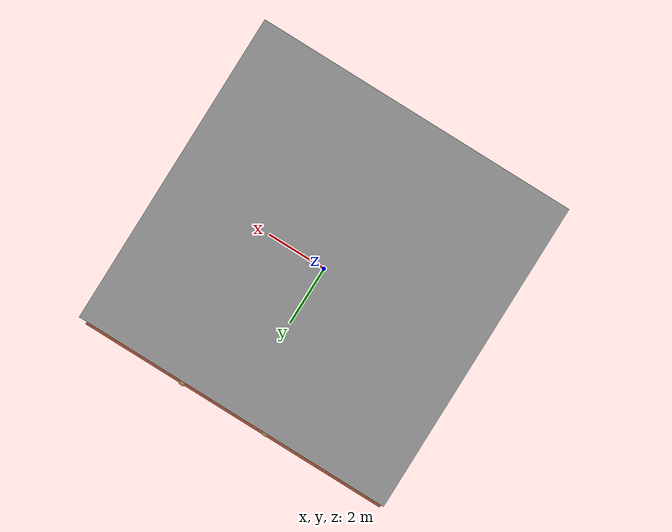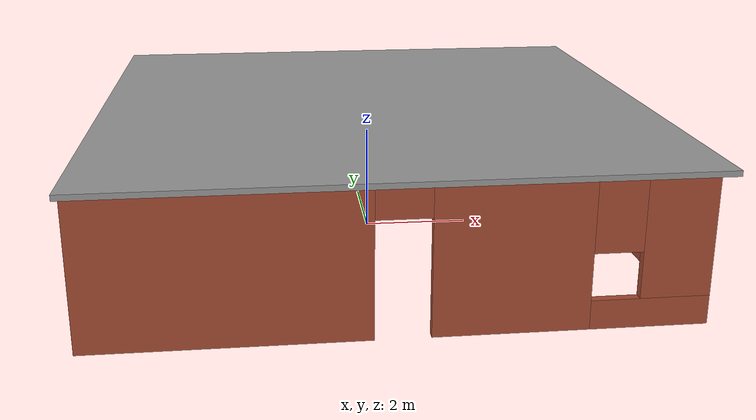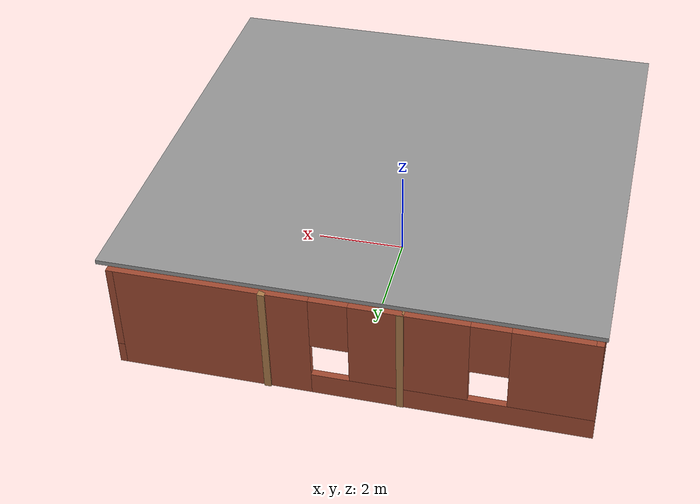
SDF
<sdf version="1.6">
 <model name="texturetest">
  <link name="Wall_1">
   <pose>0 -4.94346 0 0 -0 0</pose>
   <visual name="Wall_1_Visual_0">
    <pose>-2.70083 0 1.25 0 -0 0</pose>
    <geometry><box><size>4.59833 0.15 2.5</size></box></geometry>
    <material>
     <script><uri>file://media/materials/scripts/gazebo.material</uri><name>Gazebo/Bricks</name></script>
     <ambient>1 1 1 1</ambient>
    </material>
    <meta><layer>0</layer></meta>
   </visual>
   <visual name="Wall_1_Visual_1">
    <pose>1.77193 0 1.25 0 -0 0</pose>
    <geometry><box><size>2.5472 0.15 2.5</size></box></geometry>
    <material>
     <script><uri>file://media/materials/scripts/gazebo.material</uri><name>Gazebo/Bricks</name></script>
     <ambient>1 1 1 1</ambient>
    </material>
    <meta><layer>0</layer></meta>
   </visual>
   <visual name="Wall_1_Visual_2">
    <pose>4.02277 0 0.25 0 -0 0</pose>
    <geometry><box><size>1.95447 0.15 0.5</size></box></geometry>
    <material>
     <script><uri>file://media/materials/scripts/gazebo.material</uri><name>Gazebo/Bricks</name></script>
     <ambient>1 1 1 1</ambient>
    </material>
    <meta><layer>0</layer></meta>
   </visual>
   <visual name="Wall_1_Visual_3">
    <pose>4.42277 0 1.5 0 -0 0</pose>
    <geometry><box><size>1.15447 0.15 2</size></box></geometry>
    <material>
     <script><uri>file://media/materials/scripts/gazebo.material</uri><name>Gazebo/Bricks</name></script>
     <ambient>1 1 1 1</ambient>
    </material>
    <meta><layer>0</layer></meta>
   </visual>
   <visual name="Wall_1_Visual_4">
    <pose>3.44553 0 1.9 0 -0 0</pose>
    <geometry><box><size>0.8 0.15 1.2</size></box></geometry>
    <material>
     <script><uri>file://media/materials/scripts/gazebo.material</uri><name>Gazebo/Bricks</name></script>
     <ambient>1 1 1 1</ambient>
    </material>
    <meta><layer>0</layer></meta>
   </visual>
   <visual name="Wall_1_Visual_5">
    <pose>0.048332 0 2.25 0 -0 0</pose>
    <geometry><box><size>0.9 0.15 0.5</size></box></geometry>
    <material>
     <script><uri>file://media/materials/scripts/gazebo.material</uri><name>Gazebo/Bricks</name></script>
     <ambient>1 1 1 1</ambient>
    </material>
    <meta><layer>0</layer></meta>
   </visual>
   <collision name="Wall_1_Collision_0">
    <pose>-2.70083 0 1.25 0 -0 0</pose>
    <geometry><box><size>4.59833 0.15 2.5</size></box></geometry>
    <surface>
     <friction>
      <ode><mu>1</mu><mu2>1</mu2><fdir1>0 0 0</fdir1><slip1>0</slip1><slip2>0</slip2></ode>
      <torsional>
       <coefficient>1</coefficient>
       <patch_radius>0</patch_radius>
       <surface_radius>0</surface_radius>
       <use_patch_radius>1</use_patch_radius>
       <ode><slip>0</slip></ode>
      </torsional>
     </friction>
     <bounce><restitution_coefficient>0</restitution_coefficient><threshold>1e+06</threshold></bounce>
     <contact>
      <collide_without_contact>0</collide_without_contact>
      <collide_without_contact_bitmask>1</collide_without_contact_bitmask>
      <collide_bitmask>1</collide_bitmask>
      <ode>
       <soft_cfm>0</soft_cfm>
       <soft_erp>0.2</soft_erp>
       <kp>1e+13</kp>
       <kd>1</kd>
       <max_vel>0.01</max_vel>
       <min_depth>0</min_depth>
      </ode>
      <bullet>
       <split_impulse>1</split_impulse>
       <split_impulse_penetration_threshold>-0.01</split_impulse_penetration_threshold>
       <soft_cfm>0</soft_cfm>
       <soft_erp>0.2</soft_erp>
       <kp>1e+13</kp>
       <kd>1</kd>
      </bullet>
     </contact>
    </surface>
   </collision>
   <collision name="Wall_1_Collision_1">
    <pose>1.77193 0 1.25 0 -0 0</pose>
    <geometry><box><size>2.5472 0.15 2.5</size></box></geometry>
    <surface>
     <friction>
      <ode><mu>1</mu><mu2>1</mu2><fdir1>0 0 0</fdir1><slip1>0</slip1><slip2>0</slip2></ode>
      <torsional>
       <coefficient>1</coefficient>
       <patch_radius>0</patch_radius>
       <surface_radius>0</surface_radius>
       <use_patch_radius>1</use_patch_radius>
       <ode><slip>0</slip></ode>
      </torsional>
     </friction>
     <bounce><restitution_coefficient>0</restitution_coefficient><threshold>1e+06</threshold></bounce>
     <contact>
      <collide_without_contact>0</collide_without_contact>
      <collide_without_contact_bitmask>1</collide_without_contact_bitmask>
      <collide_bitmask>1</collide_bitmask>
      <ode>
       <soft_cfm>0</soft_cfm>
       <soft_erp>0.2</soft_erp>
       <kp>1e+13</kp>
       <kd>1</kd>
       <max_vel>0.01</max_vel>
       <min_depth>0</min_depth>
      </ode>
      <bullet>
       <split_impulse>1</split_impulse>
       <split_impulse_penetration_threshold>-0.01</split_impulse_penetration_threshold>
       <soft_cfm>0</soft_cfm>
       <soft_erp>0.2</soft_erp>
       <kp>1e+13</kp>
       <kd>1</kd>
      </bullet>
     </contact>
    </surface>
   </collision>
   <collision name="Wall_1_Collision_2">
    <pose>4.02277 0 0.25 0 -0 0</pose>
    <geometry><box><size>1.95447 0.15 0.5</size></box></geometry>
    <surface>
     <friction>
      <ode><mu>1</mu><mu2>1</mu2><fdir1>0 0 0</fdir1><slip1>0</slip1><slip2>0</slip2></ode>
      <torsional>
       <coefficient>1</coefficient>
       <patch_radius>0</patch_radius>
       <surface_radius>0</surface_radius>
       <use_patch_radius>1</use_patch_radius>
       <ode><slip>0</slip></ode>
      </torsional>
     </friction>
     <bounce><restitution_coefficient>0</restitution_coefficient><threshold>1e+06</threshold></bounce>
     <contact>
      <collide_without_contact>0</collide_without_contact>
      <collide_without_contact_bitmask>1</collide_without_contact_bitmask>
      <collide_bitmask>1</collide_bitmask>
      <ode>
       <soft_cfm>0</soft_cfm>
       <soft_erp>0.2</soft_erp>
       <kp>1e+13</kp>
       <kd>1</kd>
       <max_vel>0.01</max_vel>
       <min_depth>0</min_depth>
      </ode>
      <bullet>
       <split_impulse>1</split_impulse>
       <split_impulse_penetration_threshold>-0.01</split_impulse_penetration_threshold>
       <soft_cfm>0</soft_cfm>
       <soft_erp>0.2</soft_erp>
       <kp>1e+13</kp>
       <kd>1</kd>
      </bullet>
     </contact>
    </surface>
   </collision>
   <collision name="Wall_1_Collision_3">
    <pose>4.42277 0 1.5 0 -0 0</pose>
    <geometry><box><size>1.15447 0.15 2</size></box></geometry>
    <surface>
     <friction>
      <ode><mu>1</mu><mu2>1</mu2><fdir1>0 0 0</fdir1><slip1>0</slip1><slip2>0</slip2></ode>
      <torsional>
       <coefficient>1</coefficient>
       <patch_radius>0</patch_radius>
       <surface_radius>0</surface_radius>
       <use_patch_radius>1</use_patch_radius>
       <ode><slip>0</slip></ode>
      </torsional>
     </friction>
     <bounce><restitution_coefficient>0</restitution_coefficient><threshold>1e+06</threshold></bounce>
     <contact>
      <collide_without_contact>0</collide_without_contact>
      <collide_without_contact_bitmask>1</collide_without_contact_bitmask>
      <collide_bitmask>1</collide_bitmask>
      <ode>
       <soft_cfm>0</soft_cfm>
       <soft_erp>0.2</soft_erp>
       <kp>1e+13</kp>
       <kd>1</kd>
       <max_vel>0.01</max_vel>
       <min_depth>0</min_depth>
      </ode>
      <bullet>
       <split_impulse>1</split_impulse>
       <split_impulse_penetration_threshold>-0.01</split_impulse_penetration_threshold>
       <soft_cfm>0</soft_cfm>
       <soft_erp>0.2</soft_erp>
       <kp>1e+13</kp>
       <kd>1</kd>
      </bullet>
     </contact>
    </surface>
   </collision>
   <collision name="Wall_1_Collision_4">
    <pose>3.44553 0 1.9 0 -0 0</pose>
    <geometry><box><size>0.8 0.15 1.2</size></box></geometry>
    <surface>
     <friction>
      <ode><mu>1</mu><mu2>1</mu2><fdir1>0 0 0</fdir1><slip1>0</slip1><slip2>0</slip2></ode>
      <torsional>
       <coefficient>1</coefficient>
       <patch_radius>0</patch_radius>
       <surface_radius>0</surface_radius>
       <use_patch_radius>1</use_patch_radius>
       <ode><slip>0</slip></ode>
      </torsional>
     </friction>
     <bounce><restitution_coefficient>0</restitution_coefficient><threshold>1e+06</threshold></bounce>
     <contact>
      <collide_without_contact>0</collide_without_contact>
      <collide_without_contact_bitmask>1</collide_without_contact_bitmask>
      <collide_bitmask>1</collide_bitmask>
      <ode>
       <soft_cfm>0</soft_cfm>
       <soft_erp>0.2</soft_erp>
       <kp>1e+13</kp>
       <kd>1</kd>
       <max_vel>0.01</max_vel>
       <min_depth>0</min_depth>
      </ode>
      <bullet>
       <split_impulse>1</split_impulse>
       <split_impulse_penetration_threshold>-0.01</split_impulse_penetration_threshold>
       <soft_cfm>0</soft_cfm>
       <soft_erp>0.2</soft_erp>
       <kp>1e+13</kp>
       <kd>1</kd>
      </bullet>
     </contact>
    </surface>
   </collision>
   <collision name="Wall_1_Collision_5">
    <pose>0.048332 0 2.25 0 -0 0</pose>
    <geometry><box><size>0.9 0.15 0.5</size></box></geometry>
    <surface>
     <friction>
      <ode><mu>1</mu><mu2>1</mu2><fdir1>0 0 0</fdir1><slip1>0</slip1><slip2>0</slip2></ode>
      <torsional>
       <coefficient>1</coefficient>
       <patch_radius>0</patch_radius>
       <surface_radius>0</surface_radius>
       <use_patch_radius>1</use_patch_radius>
       <ode><slip>0</slip></ode>
      </torsional>
     </friction>
     <bounce><restitution_coefficient>0</restitution_coefficient><threshold>1e+06</threshold></bounce>
     <contact>
      <collide_without_contact>0</collide_without_contact>
      <collide_without_contact_bitmask>1</collide_without_contact_bitmask>
      <collide_bitmask>1</collide_bitmask>
      <ode>
       <soft_cfm>0</soft_cfm>
       <soft_erp>0.2</soft_erp>
       <kp>1e+13</kp>
       <kd>1</kd>
       <max_vel>0.01</max_vel>
       <min_depth>0</min_depth>
      </ode>
      <bullet>
       <split_impulse>1</split_impulse>
       <split_impulse_penetration_threshold>-0.01</split_impulse_penetration_threshold>
       <soft_cfm>0</soft_cfm>
       <soft_erp>0.2</soft_erp>
       <kp>1e+13</kp>
       <kd>1</kd>
      </bullet>
     </contact>
    </surface>
   </collision>
  </link>
  <link name="Wall_12">
   <pose>-1.06494 -0.004672 0 0 -0 1.5708</pose>
   <visual name="Wall_12_Visual_0">
    <pose>-2.70096 0 1.25 0 -0 0</pose>
    <geometry><box><size>4.59808 0.15 2.5</size></box></geometry>
    <material>
     <script><uri>file://media/materials/scripts/gazebo.material</uri><name>Gazebo/Wood</name></script>
     <ambient>1 1 1 1</ambient>
    </material>
    <meta><layer>0</layer></meta>
   </visual>
   <visual name="Wall_12_Visual_1">
    <pose>2.74904 0 1.25 0 -0 0</pose>
    <geometry><box><size>4.50192 0.15 2.5</size></box></geometry>
    <material>
     <script><uri>file://media/materials/scripts/gazebo.material</uri><name>Gazebo/Wood</name></script>
     <ambient>1 1 1 1</ambient>
    </material>
    <meta><layer>0</layer></meta>
   </visual>
   <visual name="Wall_12_Visual_2">
    <pose>0.048081 0 2.25 0 -0 0</pose>
    <geometry><box><size>0.9 0.15 0.5</size></box></geometry>
    <material>
     <script><uri>file://media/materials/scripts/gazebo.material</uri><name>Gazebo/Wood</name></script>
     <ambient>1 1 1 1</ambient>
    </material>
    <meta><layer>0</layer></meta>
   </visual>
   <collision name="Wall_12_Collision_0">
    <pose>-2.70096 0 1.25 0 -0 0</pose>
    <geometry><box><size>4.59808 0.15 2.5</size></box></geometry>
    <surface>
     <friction>
      <ode><mu>1</mu><mu2>1</mu2><fdir1>0 0 0</fdir1><slip1>0</slip1><slip2>0</slip2></ode>
      <torsional>
       <coefficient>1</coefficient>
       <patch_radius>0</patch_radius>
       <surface_radius>0</surface_radius>
       <use_patch_radius>1</use_patch_radius>
       <ode><slip>0</slip></ode>
      </torsional>
     </friction>
     <bounce><restitution_coefficient>0</restitution_coefficient><threshold>1e+06</threshold></bounce>
     <contact>
      <collide_without_contact>0</collide_without_contact>
      <collide_without_contact_bitmask>1</collide_without_contact_bitmask>
      <collide_bitmask>1</collide_bitmask>
      <ode>
       <soft_cfm>0</soft_cfm>
       <soft_erp>0.2</soft_erp>
       <kp>1e+13</kp>
       <kd>1</kd>
       <max_vel>0.01</max_vel>
       <min_depth>0</min_depth>
      </ode>
      <bullet>
       <split_impulse>1</split_impulse>
       <split_impulse_penetration_threshold>-0.01</split_impulse_penetration_threshold>
       <soft_cfm>0</soft_cfm>
       <soft_erp>0.2</soft_erp>
       <kp>1e+13</kp>
       <kd>1</kd>
      </bullet>
     </contact>
    </surface>
   </collision>
   <collision name="Wall_12_Collision_1">
    <pose>2.74904 0 1.25 0 -0 0</pose>
    <geometry><box><size>4.50192 0.15 2.5</size></box></geometry>
    <surface>
     <friction>
      <ode><mu>1</mu><mu2>1</mu2><fdir1>0 0 0</fdir1><slip1>0</slip1><slip2>0</slip2></ode>
      <torsional>
       <coefficient>1</coefficient>
       <patch_radius>0</patch_radius>
       <surface_radius>0</surface_radius>
       <use_patch_radius>1</use_patch_radius>
       <ode><slip>0</slip></ode>
      </torsional>
     </friction>
     <bounce><restitution_coefficient>0</restitution_coefficient><threshold>1e+06</threshold></bounce>
     <contact>
      <collide_without_contact>0</collide_without_contact>
      <collide_without_contact_bitmask>1</collide_without_contact_bitmask>
      <collide_bitmask>1</collide_bitmask>
      <ode>
       <soft_cfm>0</soft_cfm>
       <soft_erp>0.2</soft_erp>
       <kp>1e+13</kp>
       <kd>1</kd>
       <max_vel>0.01</max_vel>
       <min_depth>0</min_depth>
      </ode>
      <bullet>
       <split_impulse>1</split_impulse>
       <split_impulse_penetration_threshold>-0.01</split_impulse_penetration_threshold>
       <soft_cfm>0</soft_cfm>
       <soft_erp>0.2</soft_erp>
       <kp>1e+13</kp>
       <kd>1</kd>
      </bullet>
     </contact>
    </surface>
   </collision>
   <collision name="Wall_12_Collision_2">
    <pose>0.048081 0 2.25 0 -0 0</pose>
    <geometry><box><size>0.9 0.15 0.5</size></box></geometry>
    <surface>
     <friction>
      <ode><mu>1</mu><mu2>1</mu2><fdir1>0 0 0</fdir1><slip1>0</slip1><slip2>0</slip2></ode>
      <torsional>
       <coefficient>1</coefficient>
       <patch_radius>0</patch_radius>
       <surface_radius>0</surface_radius>
       <use_patch_radius>1</use_patch_radius>
       <ode><slip>0</slip></ode>
      </torsional>
     </friction>
     <bounce><restitution_coefficient>0</restitution_coefficient><threshold>1e+06</threshold></bounce>
     <contact>
      <collide_without_contact>0</collide_without_contact>
      <collide_without_contact_bitmask>1</collide_without_contact_bitmask>
      <collide_bitmask>1</collide_bitmask>
      <ode>
       <soft_cfm>0</soft_cfm>
       <soft_erp>0.2</soft_erp>
       <kp>1e+13</kp>
       <kd>1</kd>
       <max_vel>0.01</max_vel>
       <min_depth>0</min_depth>
      </ode>
      <bullet>
       <split_impulse>1</split_impulse>
       <split_impulse_penetration_threshold>-0.01</split_impulse_penetration_threshold>
       <soft_cfm>0</soft_cfm>
       <soft_erp>0.2</soft_erp>
       <kp>1e+13</kp>
       <kd>1</kd>
      </bullet>
     </contact>
    </surface>
   </collision>
  </link>
  <link name="Wall_14">
   <pose>1.73387 0.018458 0 0 -0 1.5708</pose>
   <visual name="Wall_14_Visual_0">
    <pose>-1.16277 0 1.25 0 -0 0</pose>
    <geometry><box><size>7.67445 0.15 2.5</size></box></geometry>
    <material>
     <script><uri>file://media/materials/scripts/gazebo.material</uri><name>Gazebo/Wood</name></script>
     <ambient>1 1 1 1</ambient>
    </material>
    <meta><layer>0</layer></meta>
   </visual>
   <visual name="Wall_14_Visual_1">
    <pose>4.28723 0 1.25 0 -0 0</pose>
    <geometry><box><size>1.42555 0.15 2.5</size></box></geometry>
    <material>
     <script><uri>file://media/materials/scripts/gazebo.material</uri><name>Gazebo/Wood</name></script>
     <ambient>1 1 1 1</ambient>
    </material>
    <meta><layer>0</layer></meta>
   </visual>
   <visual name="Wall_14_Visual_2">
    <pose>3.12445 0 2.25 0 -0 0</pose>
    <geometry><box><size>0.9 0.15 0.5</size></box></geometry>
    <material>
     <script><uri>file://media/materials/scripts/gazebo.material</uri><name>Gazebo/Wood</name></script>
     <ambient>1 1 1 1</ambient>
    </material>
    <meta><layer>0</layer></meta>
   </visual>
   <collision name="Wall_14_Collision_0">
    <pose>-1.16277 0 1.25 0 -0 0</pose>
    <geometry><box><size>7.67445 0.15 2.5</size></box></geometry>
    <surface>
     <friction>
      <ode><mu>1</mu><mu2>1</mu2><fdir1>0 0 0</fdir1><slip1>0</slip1><slip2>0</slip2></ode>
      <torsional>
       <coefficient>1</coefficient>
       <patch_radius>0</patch_radius>
       <surface_radius>0</surface_radius>
       <use_patch_radius>1</use_patch_radius>
       <ode><slip>0</slip></ode>
      </torsional>
     </friction>
     <bounce><restitution_coefficient>0</restitution_coefficient><threshold>1e+06</threshold></bounce>
     <contact>
      <collide_without_contact>0</collide_without_contact>
      <collide_without_contact_bitmask>1</collide_without_contact_bitmask>
      <collide_bitmask>1</collide_bitmask>
      <ode>
       <soft_cfm>0</soft_cfm>
       <soft_erp>0.2</soft_erp>
       <kp>1e+13</kp>
       <kd>1</kd>
       <max_vel>0.01</max_vel>
       <min_depth>0</min_depth>
      </ode>
      <bullet>
       <split_impulse>1</split_impulse>
       <split_impulse_penetration_threshold>-0.01</split_impulse_penetration_threshold>
       <soft_cfm>0</soft_cfm>
       <soft_erp>0.2</soft_erp>
       <kp>1e+13</kp>
       <kd>1</kd>
      </bullet>
     </contact>
    </surface>
   </collision>
   <collision name="Wall_14_Collision_1">
    <pose>4.28723 0 1.25 0 -0 0</pose>
    <geometry><box><size>1.42555 0.15 2.5</size></box></geometry>
    <surface>
     <friction>
      <ode><mu>1</mu><mu2>1</mu2><fdir1>0 0 0</fdir1><slip1>0</slip1><slip2>0</slip2></ode>
      <torsional>
       <coefficient>1</coefficient>
       <patch_radius>0</patch_radius>
       <surface_radius>0</surface_radius>
       <use_patch_radius>1</use_patch_radius>
       <ode><slip>0</slip></ode>
      </torsional>
     </friction>
     <bounce><restitution_coefficient>0</restitution_coefficient><threshold>1e+06</threshold></bounce>
     <contact>
      <collide_without_contact>0</collide_without_contact>
      <collide_without_contact_bitmask>1</collide_without_contact_bitmask>
      <collide_bitmask>1</collide_bitmask>
      <ode>
       <soft_cfm>0</soft_cfm>
       <soft_erp>0.2</soft_erp>
       <kp>1e+13</kp>
       <kd>1</kd>
       <max_vel>0.01</max_vel>
       <min_depth>0</min_depth>
      </ode>
      <bullet>
       <split_impulse>1</split_impulse>
       <split_impulse_penetration_threshold>-0.01</split_impulse_penetration_threshold>
       <soft_cfm>0</soft_cfm>
       <soft_erp>0.2</soft_erp>
       <kp>1e+13</kp>
       <kd>1</kd>
      </bullet>
     </contact>
    </surface>
   </collision>
   <collision name="Wall_14_Collision_2">
    <pose>3.12445 0 2.25 0 -0 0</pose>
    <geometry><box><size>0.9 0.15 0.5</size></box></geometry>
    <surface>
     <friction>
      <ode><mu>1</mu><mu2>1</mu2><fdir1>0 0 0</fdir1><slip1>0</slip1><slip2>0</slip2></ode>
      <torsional>
       <coefficient>1</coefficient>
       <patch_radius>0</patch_radius>
       <surface_radius>0</surface_radius>
       <use_patch_radius>1</use_patch_radius>
       <ode><slip>0</slip></ode>
      </torsional>
     </friction>
     <bounce><restitution_coefficient>0</restitution_coefficient><threshold>1e+06</threshold></bounce>
     <contact>
      <collide_without_contact>0</collide_without_contact>
      <collide_without_contact_bitmask>1</collide_without_contact_bitmask>
      <collide_bitmask>1</collide_bitmask>
      <ode>
       <soft_cfm>0</soft_cfm>
       <soft_erp>0.2</soft_erp>
       <kp>1e+13</kp>
       <kd>1</kd>
       <max_vel>0.01</max_vel>
       <min_depth>0</min_depth>
      </ode>
      <bullet>
       <split_impulse>1</split_impulse>
       <split_impulse_penetration_threshold>-0.01</split_impulse_penetration_threshold>
       <soft_cfm>0</soft_cfm>
       <soft_erp>0.2</soft_erp>
       <kp>1e+13</kp>
       <kd>1</kd>
      </bullet>
     </contact>
    </surface>
   </collision>
  </link>
  <link name="Wall_3">
   <pose>4.925 -0.018458 0 0 -0 1.5708</pose>
   <visual name="Wall_3_Visual_0">
    <pose>-3.98751 0 1.25 0 -0 0</pose>
    <geometry><box><size>2.02498 0.15 2.5</size></box></geometry>
    <material>
     <script><uri>file://media/materials/scripts/gazebo.material</uri><name>Gazebo/Bricks</name></script>
     <ambient>1 1 1 1</ambient>
    </material>
    <meta><layer>0</layer></meta>
   </visual>
   <visual name="Wall_3_Visual_1">
    <pose>1.01249 0 0.25 0 -0 0</pose>
    <geometry><box><size>7.97502 0.15 0.5</size></box></geometry>
    <material>
     <script><uri>file://media/materials/scripts/gazebo.material</uri><name>Gazebo/Bricks</name></script>
     <ambient>1 1 1 1</ambient>
    </material>
    <meta><layer>0</layer></meta>
   </visual>
   <visual name="Wall_3_Visual_2">
    <pose>0.362565 0 1.5 0 -0 0</pose>
    <geometry><box><size>5.07517 0.15 2</size></box></geometry>
    <material>
     <script><uri>file://media/materials/scripts/gazebo.material</uri><name>Gazebo/Bricks</name></script>
     <ambient>1 1 1 1</ambient>
    </material>
    <meta><layer>0</layer></meta>
   </visual>
   <visual name="Wall_3_Visual_3">
    <pose>4.35008 0 1.5 0 -0 0</pose>
    <geometry><box><size>1.29985 0.15 2</size></box></geometry>
    <material>
     <script><uri>file://media/materials/scripts/gazebo.material</uri><name>Gazebo/Bricks</name></script>
     <ambient>1 1 1 1</ambient>
    </material>
    <meta><layer>0</layer></meta>
   </visual>
   <visual name="Wall_3_Visual_4">
    <pose>-2.57502 0 1.9 0 -0 0</pose>
    <geometry><box><size>0.8 0.15 1.2</size></box></geometry>
    <material>
     <script><uri>file://media/materials/scripts/gazebo.material</uri><name>Gazebo/Bricks</name></script>
     <ambient>1 1 1 1</ambient>
    </material>
    <meta><layer>0</layer></meta>
   </visual>
   <visual name="Wall_3_Visual_5">
    <pose>3.30015 0 1.9 0 -0 0</pose>
    <geometry><box><size>0.8 0.15 1.2</size></box></geometry>
    <material>
     <script><uri>file://media/materials/scripts/gazebo.material</uri><name>Gazebo/Bricks</name></script>
     <ambient>1 1 1 1</ambient>
    </material>
    <meta><layer>0</layer></meta>
   </visual>
   <collision name="Wall_3_Collision_0">
    <pose>-3.98751 0 1.25 0 -0 0</pose>
    <geometry><box><size>2.02498 0.15 2.5</size></box></geometry>
    <surface>
     <friction>
      <ode><mu>1</mu><mu2>1</mu2><fdir1>0 0 0</fdir1><slip1>0</slip1><slip2>0</slip2></ode>
      <torsional>
       <coefficient>1</coefficient>
       <patch_radius>0</patch_radius>
       <surface_radius>0</surface_radius>
       <use_patch_radius>1</use_patch_radius>
       <ode><slip>0</slip></ode>
      </torsional>
     </friction>
     <bounce><restitution_coefficient>0</restitution_coefficient><threshold>1e+06</threshold></bounce>
     <contact>
      <collide_without_contact>0</collide_without_contact>
      <collide_without_contact_bitmask>1</collide_without_contact_bitmask>
      <collide_bitmask>1</collide_bitmask>
      <ode>
       <soft_cfm>0</soft_cfm>
       <soft_erp>0.2</soft_erp>
       <kp>1e+13</kp>
       <kd>1</kd>
       <max_vel>0.01</max_vel>
       <min_depth>0</min_depth>
      </ode>
      <bullet>
       <split_impulse>1</split_impulse>
       <split_impulse_penetration_threshold>-0.01</split_impulse_penetration_threshold>
       <soft_cfm>0</soft_cfm>
       <soft_erp>0.2</soft_erp>
       <kp>1e+13</kp>
       <kd>1</kd>
      </bullet>
     </contact>
    </surface>
   </collision>
   <collision name="Wall_3_Collision_1">
    <pose>1.01249 0 0.25 0 -0 0</pose>
    <geometry><box><size>7.97502 0.15 0.5</size></box></geometry>
    <surface>
     <friction>
      <ode><mu>1</mu><mu2>1</mu2><fdir1>0 0 0</fdir1><slip1>0</slip1><slip2>0</slip2></ode>
      <torsional>
       <coefficient>1</coefficient>
       <patch_radius>0</patch_radius>
       <surface_radius>0</surface_radius>
       <use_patch_radius>1</use_patch_radius>
       <ode><slip>0</slip></ode>
      </torsional>
     </friction>
     <bounce><restitution_coefficient>0</restitution_coefficient><threshold>1e+06</threshold></bounce>
     <contact>
      <collide_without_contact>0</collide_without_contact>
      <collide_without_contact_bitmask>1</collide_without_contact_bitmask>
      <collide_bitmask>1</collide_bitmask>
      <ode>
       <soft_cfm>0</soft_cfm>
       <soft_erp>0.2</soft_erp>
       <kp>1e+13</kp>
       <kd>1</kd>
       <max_vel>0.01</max_vel>
       <min_depth>0</min_depth>
      </ode>
      <bullet>
       <split_impulse>1</split_impulse>
       <split_impulse_penetration_threshold>-0.01</split_impulse_penetration_threshold>
       <soft_cfm>0</soft_cfm>
       <soft_erp>0.2</soft_erp>
       <kp>1e+13</kp>
       <kd>1</kd>
      </bullet>
     </contact>
    </surface>
   </collision>
   <collision name="Wall_3_Collision_2">
    <pose>0.362565 0 1.5 0 -0 0</pose>
    <geometry><box><size>5.07517 0.15 2</size></box></geometry>
    <surface>
     <friction>
      <ode><mu>1</mu><mu2>1</mu2><fdir1>0 0 0</fdir1><slip1>0</slip1><slip2>0</slip2></ode>
      <torsional>
       <coefficient>1</coefficient>
       <patch_radius>0</patch_radius>
       <surface_radius>0</surface_radius>
       <use_patch_radius>1</use_patch_radius>
       <ode><slip>0</slip></ode>
      </torsional>
     </friction>
     <bounce><restitution_coefficient>0</restitution_coefficient><threshold>1e+06</threshold></bounce>
     <contact>
      <collide_without_contact>0</collide_without_contact>
      <collide_without_contact_bitmask>1</collide_without_contact_bitmask>
      <collide_bitmask>1</collide_bitmask>
      <ode>
       <soft_cfm>0</soft_cfm>
       <soft_erp>0.2</soft_erp>
       <kp>1e+13</kp>
       <kd>1</kd>
       <max_vel>0.01</max_vel>
       <min_depth>0</min_depth>
      </ode>
      <bullet>
       <split_impulse>1</split_impulse>
       <split_impulse_penetration_threshold>-0.01</split_impulse_penetration_threshold>
       <soft_cfm>0</soft_cfm>
       <soft_erp>0.2</soft_erp>
       <kp>1e+13</kp>
       <kd>1</kd>
      </bullet>
     </contact>
    </surface>
   </collision>
   <collision name="Wall_3_Collision_3">
    <pose>4.35008 0 1.5 0 -0 0</pose>
    <geometry><box><size>1.29985 0.15 2</size></box></geometry>
    <surface>
     <friction>
      <ode><mu>1</mu><mu2>1</mu2><fdir1>0 0 0</fdir1><slip1>0</slip1><slip2>0</slip2></ode>
      <torsional>
       <coefficient>1</coefficient>
       <patch_radius>0</patch_radius>
       <surface_radius>0</surface_radius>
       <use_patch_radius>1</use_patch_radius>
       <ode><slip>0</slip></ode>
      </torsional>
     </friction>
     <bounce><restitution_coefficient>0</restitution_coefficient><threshold>1e+06</threshold></bounce>
     <contact>
      <collide_without_contact>0</collide_without_contact>
      <collide_without_contact_bitmask>1</collide_without_contact_bitmask>
      <collide_bitmask>1</collide_bitmask>
      <ode>
       <soft_cfm>0</soft_cfm>
       <soft_erp>0.2</soft_erp>
       <kp>1e+13</kp>
       <kd>1</kd>
       <max_vel>0.01</max_vel>
       <min_depth>0</min_depth>
      </ode>
      <bullet>
       <split_impulse>1</split_impulse>
       <split_impulse_penetration_threshold>-0.01</split_impulse_penetration_threshold>
       <soft_cfm>0</soft_cfm>
       <soft_erp>0.2</soft_erp>
       <kp>1e+13</kp>
       <kd>1</kd>
      </bullet>
     </contact>
    </surface>
   </collision>
   <collision name="Wall_3_Collision_4">
    <pose>-2.57502 0 1.9 0 -0 0</pose>
    <geometry><box><size>0.8 0.15 1.2</size></box></geometry>
    <surface>
     <friction>
      <ode><mu>1</mu><mu2>1</mu2><fdir1>0 0 0</fdir1><slip1>0</slip1><slip2>0</slip2></ode>
      <torsional>
       <coefficient>1</coefficient>
       <patch_radius>0</patch_radius>
       <surface_radius>0</surface_radius>
       <use_patch_radius>1</use_patch_radius>
       <ode><slip>0</slip></ode>
      </torsional>
     </friction>
     <bounce><restitution_coefficient>0</restitution_coefficient><threshold>1e+06</threshold></bounce>
     <contact>
      <collide_without_contact>0</collide_without_contact>
      <collide_without_contact_bitmask>1</collide_without_contact_bitmask>
      <collide_bitmask>1</collide_bitmask>
      <ode>
       <soft_cfm>0</soft_cfm>
       <soft_erp>0.2</soft_erp>
       <kp>1e+13</kp>
       <kd>1</kd>
       <max_vel>0.01</max_vel>
       <min_depth>0</min_depth>
      </ode>
      <bullet>
       <split_impulse>1</split_impulse>
       <split_impulse_penetration_threshold>-0.01</split_impulse_penetration_threshold>
       <soft_cfm>0</soft_cfm>
       <soft_erp>0.2</soft_erp>
       <kp>1e+13</kp>
       <kd>1</kd>
      </bullet>
     </contact>
    </surface>
   </collision>
   <collision name="Wall_3_Collision_5">
    <pose>3.30015 0 1.9 0 -0 0</pose>
    <geometry><box><size>0.8 0.15 1.2</size></box></geometry>
    <surface>
     <friction>
      <ode><mu>1</mu><mu2>1</mu2><fdir1>0 0 0</fdir1><slip1>0</slip1><slip2>0</slip2></ode>
      <torsional>
       <coefficient>1</coefficient>
       <patch_radius>0</patch_radius>
       <surface_radius>0</surface_radius>
       <use_patch_radius>1</use_patch_radius>
       <ode><slip>0</slip></ode>
      </torsional>
     </friction>
     <bounce><restitution_coefficient>0</restitution_coefficient><threshold>1e+06</threshold></bounce>
     <contact>
      <collide_without_contact>0</collide_without_contact>
      <collide_without_contact_bitmask>1</collide_without_contact_bitmask>
      <collide_bitmask>1</collide_bitmask>
      <ode>
       <soft_cfm>0</soft_cfm>
       <soft_erp>0.2</soft_erp>
       <kp>1e+13</kp>
       <kd>1</kd>
       <max_vel>0.01</max_vel>
       <min_depth>0</min_depth>
      </ode>
      <bullet>
       <split_impulse>1</split_impulse>
       <split_impulse_penetration_threshold>-0.01</split_impulse_penetration_threshold>
       <soft_cfm>0</soft_cfm>
       <soft_erp>0.2</soft_erp>
       <kp>1e+13</kp>
       <kd>1</kd>
      </bullet>
     </contact>
    </surface>
   </collision>
  </link>
  <link name="Wall_4">
   <pose>0 4.90654 0 0 -0 3.14159</pose>
   <visual name="Wall_4_Visual_0">
    <pose>-2.89615 0 1.25 0 -0 0</pose>
    <geometry><box><size>4.20771 0.15 2.5</size></box></geometry>
    <material>
     <script><uri>file://media/materials/scripts/gazebo.material</uri><name>Gazebo/Bricks</name></script>
     <ambient>1 1 1 1</ambient>
    </material>
    <meta><layer>0</layer></meta>
   </visual>
   <visual name="Wall_4_Visual_1">
    <pose>2.10385 0 0.25 0 -0 0</pose>
    <geometry><box><size>5.79229 0.15 0.5</size></box></geometry>
    <material>
     <script><uri>file://media/materials/scripts/gazebo.material</uri><name>Gazebo/Bricks</name></script>
     <ambient>1 1 1 1</ambient>
    </material>
    <meta><layer>0</layer></meta>
   </visual>
   <visual name="Wall_4_Visual_2">
    <pose>1.22685 0 1.5 0 -0 0</pose>
    <geometry><box><size>2.43829 0.15 2</size></box></geometry>
    <material>
     <script><uri>file://media/materials/scripts/gazebo.material</uri><name>Gazebo/Bricks</name></script>
     <ambient>1 1 1 1</ambient>
    </material>
    <meta><layer>0</layer></meta>
   </visual>
   <visual name="Wall_4_Visual_3">
    <pose>4.123 0 1.5 0 -0 0</pose>
    <geometry><box><size>1.75401 0.15 2</size></box></geometry>
    <material>
     <script><uri>file://media/materials/scripts/gazebo.material</uri><name>Gazebo/Bricks</name></script>
     <ambient>1 1 1 1</ambient>
    </material>
    <meta><layer>0</layer></meta>
   </visual>
   <visual name="Wall_4_Visual_4">
    <pose>-0.392292 0 1.9 0 -0 0</pose>
    <geometry><box><size>0.8 0.15 1.2</size></box></geometry>
    <material>
     <script><uri>file://media/materials/scripts/gazebo.material</uri><name>Gazebo/Bricks</name></script>
     <ambient>1 1 1 1</ambient>
    </material>
    <meta><layer>0</layer></meta>
   </visual>
   <visual name="Wall_4_Visual_5">
    <pose>2.84599 0 1.9 0 -0 0</pose>
    <geometry><box><size>0.8 0.15 1.2</size></box></geometry>
    <material>
     <script><uri>file://media/materials/scripts/gazebo.material</uri><name>Gazebo/Bricks</name></script>
     <ambient>1 1 1 1</ambient>
    </material>
    <meta><layer>0</layer></meta>
   </visual>
   <collision name="Wall_4_Collision_0">
    <pose>-2.89615 0 1.25 0 -0 0</pose>
    <geometry><box><size>4.20771 0.15 2.5</size></box></geometry>
    <surface>
     <friction>
      <ode><mu>1</mu><mu2>1</mu2><fdir1>0 0 0</fdir1><slip1>0</slip1><slip2>0</slip2></ode>
      <torsional>
       <coefficient>1</coefficient>
       <patch_radius>0</patch_radius>
       <surface_radius>0</surface_radius>
       <use_patch_radius>1</use_patch_radius>
       <ode><slip>0</slip></ode>
      </torsional>
     </friction>
     <bounce><restitution_coefficient>0</restitution_coefficient><threshold>1e+06</threshold></bounce>
     <contact>
      <collide_without_contact>0</collide_without_contact>
      <collide_without_contact_bitmask>1</collide_without_contact_bitmask>
      <collide_bitmask>1</collide_bitmask>
      <ode>
       <soft_cfm>0</soft_cfm>
       <soft_erp>0.2</soft_erp>
       <kp>1e+13</kp>
       <kd>1</kd>
       <max_vel>0.01</max_vel>
       <min_depth>0</min_depth>
      </ode>
      <bullet>
       <split_impulse>1</split_impulse>
       <split_impulse_penetration_threshold>-0.01</split_impulse_penetration_threshold>
       <soft_cfm>0</soft_cfm>
       <soft_erp>0.2</soft_erp>
       <kp>1e+13</kp>
       <kd>1</kd>
      </bullet>
     </contact>
    </surface>
   </collision>
   <collision name="Wall_4_Collision_1">
    <pose>2.10385 0 0.25 0 -0 0</pose>
    <geometry><box><size>5.79229 0.15 0.5</size></box></geometry>
    <surface>
     <friction>
      <ode><mu>1</mu><mu2>1</mu2><fdir1>0 0 0</fdir1><slip1>0</slip1><slip2>0</slip2></ode>
      <torsional>
       <coefficient>1</coefficient>
       <patch_radius>0</patch_radius>
       <surface_radius>0</surface_radius>
       <use_patch_radius>1</use_patch_radius>
       <ode><slip>0</slip></ode>
      </torsional>
     </friction>
     <bounce><restitution_coefficient>0</restitution_coefficient><threshold>1e+06</threshold></bounce>
     <contact>
      <collide_without_contact>0</collide_without_contact>
      <collide_without_contact_bitmask>1</collide_without_contact_bitmask>
      <collide_bitmask>1</collide_bitmask>
      <ode>
       <soft_cfm>0</soft_cfm>
       <soft_erp>0.2</soft_erp>
       <kp>1e+13</kp>
       <kd>1</kd>
       <max_vel>0.01</max_vel>
       <min_depth>0</min_depth>
      </ode>
      <bullet>
       <split_impulse>1</split_impulse>
       <split_impulse_penetration_threshold>-0.01</split_impulse_penetration_threshold>
       <soft_cfm>0</soft_cfm>
       <soft_erp>0.2</soft_erp>
       <kp>1e+13</kp>
       <kd>1</kd>
      </bullet>
     </contact>
    </surface>
   </collision>
   <collision name="Wall_4_Collision_2">
    <pose>1.22685 0 1.5 0 -0 0</pose>
    <geometry><box><size>2.43829 0.15 2</size></box></geometry>
    <surface>
     <friction>
      <ode><mu>1</mu><mu2>1</mu2><fdir1>0 0 0</fdir1><slip1>0</slip1><slip2>0</slip2></ode>
      <torsional>
       <coefficient>1</coefficient>
       <patch_radius>0</patch_radius>
       <surface_radius>0</surface_radius>
       <use_patch_radius>1</use_patch_radius>
       <ode><slip>0</slip></ode>
      </torsional>
     </friction>
     <bounce><restitution_coefficient>0</restitution_coefficient><threshold>1e+06</threshold></bounce>
     <contact>
      <collide_without_contact>0</collide_without_contact>
      <collide_without_contact_bitmask>1</collide_without_contact_bitmask>
      <collide_bitmask>1</collide_bitmask>
      <ode>
       <soft_cfm>0</soft_cfm>
       <soft_erp>0.2</soft_erp>
       <kp>1e+13</kp>
       <kd>1</kd>
       <max_vel>0.01</max_vel>
       <min_depth>0</min_depth>
      </ode>
      <bullet>
       <split_impulse>1</split_impulse>
       <split_impulse_penetration_threshold>-0.01</split_impulse_penetration_threshold>
       <soft_cfm>0</soft_cfm>
       <soft_erp>0.2</soft_erp>
       <kp>1e+13</kp>
       <kd>1</kd>
      </bullet>
     </contact>
    </surface>
   </collision>
   <collision name="Wall_4_Collision_3">
    <pose>4.123 0 1.5 0 -0 0</pose>
    <geometry><box><size>1.75401 0.15 2</size></box></geometry>
    <surface>
     <friction>
      <ode><mu>1</mu><mu2>1</mu2><fdir1>0 0 0</fdir1><slip1>0</slip1><slip2>0</slip2></ode>
      <torsional>
       <coefficient>1</coefficient>
       <patch_radius>0</patch_radius>
       <surface_radius>0</surface_radius>
       <use_patch_radius>1</use_patch_radius>
       <ode><slip>0</slip></ode>
      </torsional>
     </friction>
     <bounce><restitution_coefficient>0</restitution_coefficient><threshold>1e+06</threshold></bounce>
     <contact>
      <collide_without_contact>0</collide_without_contact>
      <collide_without_contact_bitmask>1</collide_without_contact_bitmask>
      <collide_bitmask>1</collide_bitmask>
      <ode>
       <soft_cfm>0</soft_cfm>
       <soft_erp>0.2</soft_erp>
       <kp>1e+13</kp>
       <kd>1</kd>
       <max_vel>0.01</max_vel>
       <min_depth>0</min_depth>
      </ode>
      <bullet>
       <split_impulse>1</split_impulse>
       <split_impulse_penetration_threshold>-0.01</split_impulse_penetration_threshold>
       <soft_cfm>0</soft_cfm>
       <soft_erp>0.2</soft_erp>
       <kp>1e+13</kp>
       <kd>1</kd>
      </bullet>
     </contact>
    </surface>
   </collision>
   <collision name="Wall_4_Collision_4">
    <pose>-0.392292 0 1.9 0 -0 0</pose>
    <geometry><box><size>0.8 0.15 1.2</size></box></geometry>
    <surface>
     <friction>
      <ode><mu>1</mu><mu2>1</mu2><fdir1>0 0 0</fdir1><slip1>0</slip1><slip2>0</slip2></ode>
      <torsional>
       <coefficient>1</coefficient>
       <patch_radius>0</patch_radius>
       <surface_radius>0</surface_radius>
       <use_patch_radius>1</use_patch_radius>
       <ode><slip>0</slip></ode>
      </torsional>
     </friction>
     <bounce><restitution_coefficient>0</restitution_coefficient><threshold>1e+06</threshold></bounce>
     <contact>
      <collide_without_contact>0</collide_without_contact>
      <collide_without_contact_bitmask>1</collide_without_contact_bitmask>
      <collide_bitmask>1</collide_bitmask>
      <ode>
       <soft_cfm>0</soft_cfm>
       <soft_erp>0.2</soft_erp>
       <kp>1e+13</kp>
       <kd>1</kd>
       <max_vel>0.01</max_vel>
       <min_depth>0</min_depth>
      </ode>
      <bullet>
       <split_impulse>1</split_impulse>
       <split_impulse_penetration_threshold>-0.01</split_impulse_penetration_threshold>
       <soft_cfm>0</soft_cfm>
       <soft_erp>0.2</soft_erp>
       <kp>1e+13</kp>
       <kd>1</kd>
      </bullet>
     </contact>
    </surface>
   </collision>
   <collision name="Wall_4_Collision_5">
    <pose>2.84599 0 1.9 0 -0 0</pose>
    <geometry><box><size>0.8 0.15 1.2</size></box></geometry>
    <surface>
     <friction>
      <ode><mu>1</mu><mu2>1</mu2><fdir1>0 0 0</fdir1><slip1>0</slip1><slip2>0</slip2></ode>
      <torsional>
       <coefficient>1</coefficient>
       <patch_radius>0</patch_radius>
       <surface_radius>0</surface_radius>
       <use_patch_radius>1</use_patch_radius>
       <ode><slip>0</slip></ode>
      </torsional>
     </friction>
     <bounce><restitution_coefficient>0</restitution_coefficient><threshold>1e+06</threshold></bounce>
     <contact>
      <collide_without_contact>0</collide_without_contact>
      <collide_without_contact_bitmask>1</collide_without_contact_bitmask>
      <collide_bitmask>1</collide_bitmask>
      <ode>
       <soft_cfm>0</soft_cfm>
       <soft_erp>0.2</soft_erp>
       <kp>1e+13</kp>
       <kd>1</kd>
       <max_vel>0.01</max_vel>
       <min_depth>0</min_depth>
      </ode>
      <bullet>
       <split_impulse>1</split_impulse>
       <split_impulse_penetration_threshold>-0.01</split_impulse_penetration_threshold>
       <soft_cfm>0</soft_cfm>
       <soft_erp>0.2</soft_erp>
       <kp>1e+13</kp>
       <kd>1</kd>
      </bullet>
     </contact>
    </surface>
   </collision>
  </link>
  <link name="Wall_6">
   <pose>-4.925 -0.018458 0 0 0 -1.5708</pose>
   <visual name="Wall_6_Visual_0">
    <pose>-4.26912 0 1.25 0 -0 0</pose>
    <geometry><box><size>1.46176 0.15 2.5</size></box></geometry>
    <material>
     <script><uri>file://media/materials/scripts/gazebo.material</uri><name>Gazebo/Bricks</name></script>
     <ambient>1 1 1 1</ambient>
    </material>
    <meta><layer>0</layer></meta>
   </visual>
   <visual name="Wall_6_Visual_1">
    <pose>0.730881 0 0.25 0 -0 0</pose>
    <geometry><box><size>8.53824 0.15 0.5</size></box></geometry>
    <material>
     <script><uri>file://media/materials/scripts/gazebo.material</uri><name>Gazebo/Bricks</name></script>
     <ambient>1 1 1 1</ambient>
    </material>
    <meta><layer>0</layer></meta>
   </visual>
   <visual name="Wall_6_Visual_2">
    <pose>-0.084998 0 1.5 0 -0 0</pose>
    <geometry><box><size>5.30648 0.15 2</size></box></geometry>
    <material>
     <script><uri>file://media/materials/scripts/gazebo.material</uri><name>Gazebo/Bricks</name></script>
     <ambient>1 1 1 1</ambient>
    </material>
    <meta><layer>0</layer></meta>
   </visual>
   <visual name="Wall_6_Visual_3">
    <pose>4.18412 0 1.5 0 -0 0</pose>
    <geometry><box><size>1.63176 0.15 2</size></box></geometry>
    <material>
     <script><uri>file://media/materials/scripts/gazebo.material</uri><name>Gazebo/Bricks</name></script>
     <ambient>1 1 1 1</ambient>
    </material>
    <meta><layer>0</layer></meta>
   </visual>
   <visual name="Wall_6_Visual_4">
    <pose>-3.13824 0 1.9 0 -0 0</pose>
    <geometry><box><size>0.8 0.15 1.2</size></box></geometry>
    <material>
     <script><uri>file://media/materials/scripts/gazebo.material</uri><name>Gazebo/Bricks</name></script>
     <ambient>1 1 1 1</ambient>
    </material>
    <meta><layer>0</layer></meta>
   </visual>
   <visual name="Wall_6_Visual_5">
    <pose>2.96824 0 1.9 0 -0 0</pose>
    <geometry><box><size>0.8 0.15 1.2</size></box></geometry>
    <material>
     <script><uri>file://media/materials/scripts/gazebo.material</uri><name>Gazebo/Bricks</name></script>
     <ambient>1 1 1 1</ambient>
    </material>
    <meta><layer>0</layer></meta>
   </visual>
   <collision name="Wall_6_Collision_0">
    <pose>-4.26912 0 1.25 0 -0 0</pose>
    <geometry><box><size>1.46176 0.15 2.5</size></box></geometry>
    <surface>
     <friction>
      <ode><mu>1</mu><mu2>1</mu2><fdir1>0 0 0</fdir1><slip1>0</slip1><slip2>0</slip2></ode>
      <torsional>
       <coefficient>1</coefficient>
       <patch_radius>0</patch_radius>
       <surface_radius>0</surface_radius>
       <use_patch_radius>1</use_patch_radius>
       <ode><slip>0</slip></ode>
      </torsional>
     </friction>
     <bounce><restitution_coefficient>0</restitution_coefficient><threshold>1e+06</threshold></bounce>
     <contact>
      <collide_without_contact>0</collide_without_contact>
      <collide_without_contact_bitmask>1</collide_without_contact_bitmask>
      <collide_bitmask>1</collide_bitmask>
      <ode>
       <soft_cfm>0</soft_cfm>
       <soft_erp>0.2</soft_erp>
       <kp>1e+13</kp>
       <kd>1</kd>
       <max_vel>0.01</max_vel>
       <min_depth>0</min_depth>
      </ode>
      <bullet>
       <split_impulse>1</split_impulse>
       <split_impulse_penetration_threshold>-0.01</split_impulse_penetration_threshold>
       <soft_cfm>0</soft_cfm>
       <soft_erp>0.2</soft_erp>
       <kp>1e+13</kp>
       <kd>1</kd>
      </bullet>
     </contact>
    </surface>
   </collision>
   <collision name="Wall_6_Collision_1">
    <pose>0.730881 0 0.25 0 -0 0</pose>
    <geometry><box><size>8.53824 0.15 0.5</size></box></geometry>
    <surface>
     <friction>
      <ode><mu>1</mu><mu2>1</mu2><fdir1>0 0 0</fdir1><slip1>0</slip1><slip2>0</slip2></ode>
      <torsional>
       <coefficient>1</coefficient>
       <patch_radius>0</patch_radius>
       <surface_radius>0</surface_radius>
       <use_patch_radius>1</use_patch_radius>
       <ode><slip>0</slip></ode>
      </torsional>
     </friction>
     <bounce><restitution_coefficient>0</restitution_coefficient><threshold>1e+06</threshold></bounce>
     <contact>
      <collide_without_contact>0</collide_without_contact>
      <collide_without_contact_bitmask>1</collide_without_contact_bitmask>
      <collide_bitmask>1</collide_bitmask>
      <ode>
       <soft_cfm>0</soft_cfm>
       <soft_erp>0.2</soft_erp>
       <kp>1e+13</kp>
       <kd>1</kd>
       <max_vel>0.01</max_vel>
       <min_depth>0</min_depth>
      </ode>
      <bullet>
       <split_impulse>1</split_impulse>
       <split_impulse_penetration_threshold>-0.01</split_impulse_penetration_threshold>
       <soft_cfm>0</soft_cfm>
       <soft_erp>0.2</soft_erp>
       <kp>1e+13</kp>
       <kd>1</kd>
      </bullet>
     </contact>
    </surface>
   </collision>
   <collision name="Wall_6_Collision_2">
    <pose>-0.084998 0 1.5 0 -0 0</pose>
    <geometry><box><size>5.30648 0.15 2</size></box></geometry>
    <surface>
     <friction>
      <ode><mu>1</mu><mu2>1</mu2><fdir1>0 0 0</fdir1><slip1>0</slip1><slip2>0</slip2></ode>
      <torsional>
       <coefficient>1</coefficient>
       <patch_radius>0</patch_radius>
       <surface_radius>0</surface_radius>
       <use_patch_radius>1</use_patch_radius>
       <ode><slip>0</slip></ode>
      </torsional>
     </friction>
     <bounce><restitution_coefficient>0</restitution_coefficient><threshold>1e+06</threshold></bounce>
     <contact>
      <collide_without_contact>0</collide_without_contact>
      <collide_without_contact_bitmask>1</collide_without_contact_bitmask>
      <collide_bitmask>1</collide_bitmask>
      <ode>
       <soft_cfm>0</soft_cfm>
       <soft_erp>0.2</soft_erp>
       <kp>1e+13</kp>
       <kd>1</kd>
       <max_vel>0.01</max_vel>
       <min_depth>0</min_depth>
      </ode>
      <bullet>
       <split_impulse>1</split_impulse>
       <split_impulse_penetration_threshold>-0.01</split_impulse_penetration_threshold>
       <soft_cfm>0</soft_cfm>
       <soft_erp>0.2</soft_erp>
       <kp>1e+13</kp>
       <kd>1</kd>
      </bullet>
     </contact>
    </surface>
   </collision>
   <collision name="Wall_6_Collision_3">
    <pose>4.18412 0 1.5 0 -0 0</pose>
    <geometry><box><size>1.63176 0.15 2</size></box></geometry>
    <surface>
     <friction>
      <ode><mu>1</mu><mu2>1</mu2><fdir1>0 0 0</fdir1><slip1>0</slip1><slip2>0</slip2></ode>
      <torsional>
       <coefficient>1</coefficient>
       <patch_radius>0</patch_radius>
       <surface_radius>0</surface_radius>
       <use_patch_radius>1</use_patch_radius>
       <ode><slip>0</slip></ode>
      </torsional>
     </friction>
     <bounce><restitution_coefficient>0</restitution_coefficient><threshold>1e+06</threshold></bounce>
     <contact>
      <collide_without_contact>0</collide_without_contact>
      <collide_without_contact_bitmask>1</collide_without_contact_bitmask>
      <collide_bitmask>1</collide_bitmask>
      <ode>
       <soft_cfm>0</soft_cfm>
       <soft_erp>0.2</soft_erp>
       <kp>1e+13</kp>
       <kd>1</kd>
       <max_vel>0.01</max_vel>
       <min_depth>0</min_depth>
      </ode>
      <bullet>
       <split_impulse>1</split_impulse>
       <split_impulse_penetration_threshold>-0.01</split_impulse_penetration_threshold>
       <soft_cfm>0</soft_cfm>
       <soft_erp>0.2</soft_erp>
       <kp>1e+13</kp>
       <kd>1</kd>
      </bullet>
     </contact>
    </surface>
   </collision>
   <collision name="Wall_6_Collision_4">
    <pose>-3.13824 0 1.9 0 -0 0</pose>
    <geometry><box><size>0.8 0.15 1.2</size></box></geometry>
    <surface>
     <friction>
      <ode><mu>1</mu><mu2>1</mu2><fdir1>0 0 0</fdir1><slip1>0</slip1><slip2>0</slip2></ode>
      <torsional>
       <coefficient>1</coefficient>
       <patch_radius>0</patch_radius>
       <surface_radius>0</surface_radius>
       <use_patch_radius>1</use_patch_radius>
       <ode><slip>0</slip></ode>
      </torsional>
     </friction>
     <bounce><restitution_coefficient>0</restitution_coefficient><threshold>1e+06</threshold></bounce>
     <contact>
      <collide_without_contact>0</collide_without_contact>
      <collide_without_contact_bitmask>1</collide_without_contact_bitmask>
      <collide_bitmask>1</collide_bitmask>
      <ode>
       <soft_cfm>0</soft_cfm>
       <soft_erp>0.2</soft_erp>
       <kp>1e+13</kp>
       <kd>1</kd>
       <max_vel>0.01</max_vel>
       <min_depth>0</min_depth>
      </ode>
      <bullet>
       <split_impulse>1</split_impulse>
       <split_impulse_penetration_threshold>-0.01</split_impulse_penetration_threshold>
       <soft_cfm>0</soft_cfm>
       <soft_erp>0.2</soft_erp>
       <kp>1e+13</kp>
       <kd>1</kd>
      </bullet>
     </contact>
    </surface>
   </collision>
   <collision name="Wall_6_Collision_5">
    <pose>2.96824 0 1.9 0 -0 0</pose>
    <geometry><box><size>0.8 0.15 1.2</size></box></geometry>
    <surface>
     <friction>
      <ode><mu>1</mu><mu2>1</mu2><fdir1>0 0 0</fdir1><slip1>0</slip1><slip2>0</slip2></ode>
      <torsional>
       <coefficient>1</coefficient>
       <patch_radius>0</patch_radius>
       <surface_radius>0</surface_radius>
       <use_patch_radius>1</use_patch_radius>
       <ode><slip>0</slip></ode>
      </torsional>
     </friction>
     <bounce><restitution_coefficient>0</restitution_coefficient><threshold>1e+06</threshold></bounce>
     <contact>
      <collide_without_contact>0</collide_without_contact>
      <collide_without_contact_bitmask>1</collide_without_contact_bitmask>
      <collide_bitmask>1</collide_bitmask>
      <ode>
       <soft_cfm>0</soft_cfm>
       <soft_erp>0.2</soft_erp>
       <kp>1e+13</kp>
       <kd>1</kd>
       <max_vel>0.01</max_vel>
       <min_depth>0</min_depth>
      </ode>
      <bullet>
       <split_impulse>1</split_impulse>
       <split_impulse_penetration_threshold>-0.01</split_impulse_penetration_threshold>
       <soft_cfm>0</soft_cfm>
       <soft_erp>0.2</soft_erp>
       <kp>1e+13</kp>
       <kd>1</kd>
      </bullet>
     </contact>
    </surface>
   </collision>
  </link>
  <link name="link_0">
   <inertial>
    <mass>10.0802</mass>
    <inertia><ixx>85.1397</ixx><ixy>0</ixy><ixz>0</ixz><iyy>89.1316</iyy><iyz>0</iyz><izz>174.255</izz></inertia>
   </inertial>
   <pose>0.087218 -0.148702 2.59353 0 -0 0</pose>
   <visual name="visual">
    <geometry><box><size>10.3004 10.067 0.097463</size></box></geometry>
    <material>
     <lighting>1</lighting>
     <script><uri>file://media/materials/scripts/gazebo.material</uri><name>Gazebo/Grey</name></script>
    </material>
   </visual>
   <collision name="collision">
    <geometry><box><size>10.3004 10.067 0.097463</size></box></geometry>
    <surface>
     <friction>
      <ode><mu>1</mu><mu2>1</mu2><fdir1>0 0 0</fdir1><slip1>0</slip1><slip2>0</slip2></ode>
      <torsional>
       <coefficient>1</coefficient>
       <patch_radius>0</patch_radius>
       <surface_radius>0</surface_radius>
       <use_patch_radius>1</use_patch_radius>
       <ode><slip>0</slip></ode>
      </torsional>
     </friction>
     <bounce><restitution_coefficient>0</restitution_coefficient><threshold>1e+06</threshold></bounce>
     <contact>
      <collide_without_contact>0</collide_without_contact>
      <collide_without_contact_bitmask>1</collide_without_contact_bitmask>
      <collide_bitmask>1</collide_bitmask>
      <ode>
       <soft_cfm>0</soft_cfm>
       <soft_erp>0.2</soft_erp>
       <kp>1e+13</kp>
       <kd>1</kd>
       <max_vel>0.01</max_vel>
       <min_depth>0</min_depth>
      </ode>
      <bullet>
       <split_impulse>1</split_impulse>
       <split_impulse_penetration_threshold>-0.01</split_impulse_penetration_threshold>
       <soft_cfm>0</soft_cfm>
       <soft_erp>0.2</soft_erp>
       <kp>1e+13</kp>
       <kd>1</kd>
      </bullet>
     </contact>
    </surface>
   </collision>
  </link>
  <static>1</static>
 </model>
</sdf>
